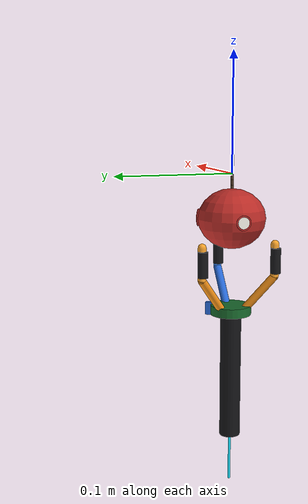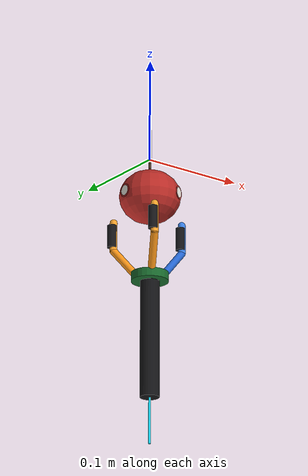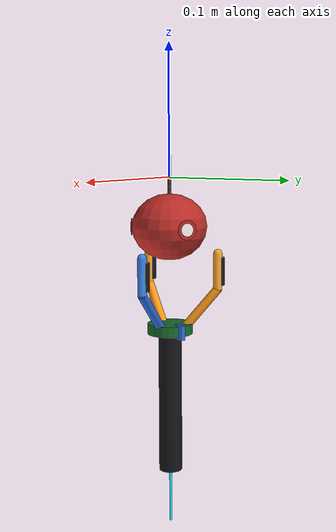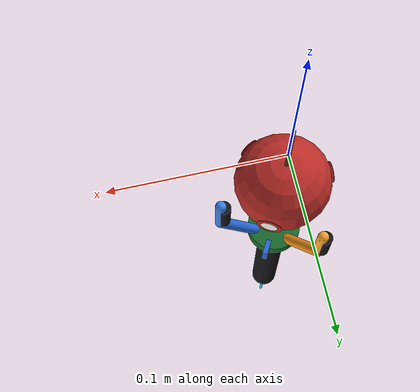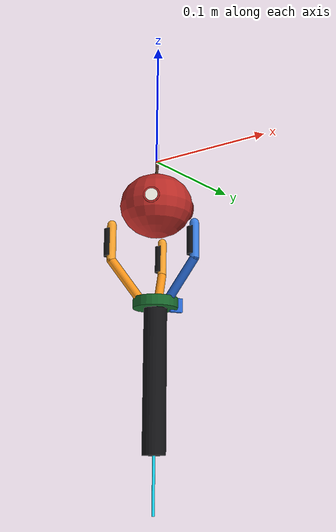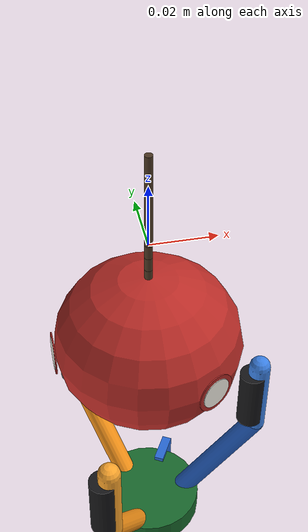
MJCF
<mujoco model="aipick_harvest_detached">
  <compiler angle="radian" autolimits="true"/>
  <option timestep="0.004166666667" gravity="0 0 -9.81" integrator="Euler"/>

  <asset>
    <texture name="sky" type="skybox" builtin="flat" rgb1="1 1 1" rgb2="1 1 1"
             width="256" height="256"/>
  </asset>
  <visual>
    <global offwidth="1280" offheight="960"/>
    <headlight ambient="0.62 0.62 0.62" diffuse="0.45 0.45 0.45" specular="0.1 0.1 0.1"/>
    <scale contactwidth="0.0850" contactheight="0.0120"
           forcewidth="0.02"/>
    <rgba contactpoint="0.12 0.12 0.14 1"/>
  </visual>

  <default>
    <geom rgba="0.62 0.47 0.26 1"/>
    <joint type="ball" stiffness="0.03" damping="0.0015"/>
  </default>

  <worldbody>
    <light pos="0 0 0.3" dir="0 0 -1"/>
    <geom name="spur" type="cylinder" fromto="0 0 0  0 0 0.03" size="0.0012"
          rgba="0.30 0.22 0.14 1"/>
    <body name="fruit" pos="0 0 -0.0372025">
        <freejoint name="fruit_free"/>
        <site name="s_stem" pos="0 0 0.01495" size="0.0008" rgba="1 0 0 1"/>
        <inertial pos="0 0 0" mass="0.073580733796237" diaginertia="2.15835e-05 2.15835e-05 2.43276e-05"/>
        <geom name="apple" type="ellipsoid" size="0.02875 0.02875 0.0253"
              condim="4" priority="1" friction="0.45 0.005 0" rgba="0.75 0.18 0.16 1"/>
        <geom name="label0_rim" type="cylinder" pos="0.0144325 0.0249978233 0" quat="0.707106781 -0.612372436 0.353553391 0"
              size="0.0074635 0.00018" contype="0" conaffinity="0" group="2" mass="0"
              rgba="0.70 0.16 0.15 1"/>
        <geom name="label0" type="cylinder" pos="0.0145325 0.0251710284 0" quat="0.707106781 -0.612372436 0.353553391 0"
              size="0.0049335 0.00018" contype="0" conaffinity="0" group="2" mass="0"
              rgba="0.98 0.97 0.93 1"/>
        <geom name="label1_rim" type="cylinder" pos="-0.028865 3.53494299e-18 0" quat="0.707106781 -8.65956056e-17 -0.707106781 0"
              size="0.006325 0.00018" contype="0" conaffinity="0" group="2" mass="0"
              rgba="0.70 0.16 0.15 1"/>
        <geom name="label1" type="cylinder" pos="-0.029065 3.55943592e-18 0" quat="0.707106781 -8.65956056e-17 -0.707106781 0"
              size="0.0049335 0.00018" contype="0" conaffinity="0" group="2" mass="0"
              rgba="0.98 0.97 0.93 1"/>
        <geom name="label2_rim" type="cylinder" pos="0.0144325 -0.0249978233 0" quat="0.707106781 0.612372436 0.353553391 -0"
              size="0.006325 0.00018" contype="0" conaffinity="0" group="2" mass="0"
              rgba="0.70 0.16 0.15 1"/>
        <geom name="label2" type="cylinder" pos="0.0145325 -0.0251710284 0" quat="0.707106781 0.612372436 0.353553391 -0"
              size="0.0049335 0.00018" contype="0" conaffinity="0" group="2" mass="0"
              rgba="0.98 0.97 0.93 1"/>
      </body>
    <body name="seg4" pos="0 0 0">
        <site name="s_az" pos="0 0 0" size="0.0006" rgba="1 0.4 0 1"/>
        <joint name="j_az_x" type="hinge" axis="1 0 0" stiffness="0" damping="0.0015"/>
        <joint name="j_az_y" type="hinge" axis="0 1 0" stiffness="0" damping="0.0015"/>
        <joint name="j_az_t" type="hinge" axis="0 0 1" stiffness="0.020999999999999998" damping="0.0015"/>
        <inertial pos="0 0 -0.00222525" mass="0.02" diaginertia="2e-05 2e-05 1e-05"/>
        <geom name="g4" type="cylinder" fromto="0 0 0  0 0 -0.0044505" size="0.00192"
              group="3" rgba="0 0 0 0"/>
        <geom name="v4" type="cylinder" fromto="0 0 0  0 0 -0.0044505" size="0.0012"
              contype="0" conaffinity="0" group="2" rgba="0.30 0.22 0.14 1"/>
        <body name="seg3" pos="0 0 -0.0044505">
        <joint name="j_in4"/>
        <inertial pos="0 0 -0.00222525" mass="0.02" diaginertia="2e-05 2e-05 1e-05"/>
        <geom name="g3" type="cylinder" fromto="0 0 0  0 0 -0.0044505" size="0.00216"
              group="3" rgba="0 0 0 0"/>
        <geom name="v3" type="cylinder" fromto="0 0 0  0 0 -0.0044505" size="0.0012"
              contype="0" conaffinity="0" group="2" rgba="0.30 0.22 0.14 1"/>
        <body name="seg2" pos="0 0 -0.0044505">
        <joint name="j_in3"/>
        <inertial pos="0 0 -0.00222525" mass="0.02" diaginertia="2e-05 2e-05 1e-05"/>
        <geom name="g2" type="cylinder" fromto="0 0 0  0 0 -0.0044505" size="0.0024"
              group="3" rgba="0 0 0 0"/>
        <geom name="v2" type="cylinder" fromto="0 0 0  0 0 -0.0044505" size="0.0012"
              contype="0" conaffinity="0" group="2" rgba="0.30 0.22 0.14 1"/>
        <body name="seg1" pos="0 0 -0.0044505">
        <joint name="j_in2"/>
        <inertial pos="0 0 -0.00222525" mass="0.02" diaginertia="2e-05 2e-05 1e-05"/>
        <geom name="g1" type="cylinder" fromto="0 0 0  0 0 -0.0044505" size="0.00264"
              group="3" rgba="0 0 0 0"/>
        <geom name="v1" type="cylinder" fromto="0 0 0  0 0 -0.0044505" size="0.0012"
              contype="0" conaffinity="0" group="2" rgba="0.30 0.22 0.14 1"/>
        <body name="seg0" pos="0 0 -0.0044505">
        <joint name="j_in1"/>
        <inertial pos="0 0 -0.00222525" mass="0.02" diaginertia="2e-05 2e-05 1e-05"/>
        <geom name="g0" type="cylinder" fromto="0 0 0  0 0 -0.0044505" size="0.00288"
              group="3" rgba="0 0 0 0"/>
        <geom name="v0" type="cylinder" fromto="0 0 0  0 0 -0.0044505" size="0.0012"
              contype="0" conaffinity="0" group="2" rgba="0.30 0.22 0.14 1"/>

      </body>
      </body>
      </body>
      </body>
      </body>

    <body name="palm" pos="0 0 -0.12">
      <freejoint name="wrist"/>
      <site name="s_palm" pos="0 0 0" size="0.001" rgba="0 1 1 1"/>
      <inertial pos="0 0 0.004" mass="0.3"
                diaginertia="0.01 0.01 0.01"/>
      <geom name="gbase" type="cylinder" fromto="0 0 0  0 0 0.008" size="0.017425"
            mass="0" rgba="0.10 0.42 0.18 1"/>
      <geom name="index_tab" type="box"
            pos="0.00853825 0.0147887 0.004"
            quat="0.866025404 0 0 0.5" size="0.005 0.0016 0.0055"
            contype="0" conaffinity="0" group="2" mass="0" rgba="0.16 0.42 0.85 1"/>
      <geom name="handle" type="cylinder" pos="0 0 -0.055" size="0.009 0.055"
            contype="0" conaffinity="0" group="2" mass="0" rgba="0.08 0.08 0.09 1"/>
      <geom name="axisrod" type="cylinder" pos="0 0 -0.078" size="0.0011 0.075"
            contype="0" conaffinity="0" group="2" mass="0" rgba="0.10 0.85 0.95 1"/>
      <body name="lo0" pos="0.010925 0 0.004" quat="0.939692621 -0 0.342020143 0">
        <joint name="fj0" type="hinge" axis="0 -1 -0" range="0 1.2" damping="0.002" armature="1e-5"/>
        <geom name="glo0" type="capsule" fromto="0 0 0  0 0 0.04025" size="0.0035"
              mass="0.004" rgba="0.16 0.42 0.85 1"/>
        <body name="up0" pos="0 0 0.04025" quat="0.939692621 0 -0.342020143 -0">
          <geom name="gup0" type="capsule" fromto="0 0 0  0 0 0.0276" size="0.0035"
                mass="0.003" rgba="0.24 0.52 0.92 1"/>
          <geom name="pad0" type="cylinder" pos="-0.001925 0 0.0138"
                size="0.004375 0.010764"
                contype="0" conaffinity="0" group="2" mass="0" rgba="0.09 0.09 0.10 1"/>
        </body>
      </body>
      <body name="lo1" pos="-0.0054625 0.00946132754 0.004" quat="0.939692621 -0.296198133 -0.171010072 0">
        <joint name="fj1" type="hinge" axis="0.866025404 0.5 -0" range="0 1.2" damping="0.002" armature="1e-5"/>
        <geom name="glo1" type="capsule" fromto="0 0 0  0 0 0.04025" size="0.0035"
              mass="0.004" rgba="1 0.6 0.1 1"/>
        <body name="up1" pos="0 0 0.04025" quat="0.939692621 0.296198133 0.171010072 -0">
          <geom name="gup1" type="capsule" fromto="0 0 0  0 0 0.0276" size="0.0035"
                mass="0.003" rgba="1 0.66 0.18 1"/>
          <geom name="pad1" type="cylinder" pos="-0.001925 0 0.0138"
                size="0.004375 0.010764"
                contype="0" conaffinity="0" group="2" mass="0" rgba="0.09 0.09 0.10 1"/>
        </body>
      </body>
      <body name="lo2" pos="-0.0054625 -0.00946132754 0.004" quat="0.939692621 0.296198133 -0.171010072 0">
        <joint name="fj2" type="hinge" axis="-0.866025404 0.5 -0" range="0 1.2" damping="0.002" armature="1e-5"/>
        <geom name="glo2" type="capsule" fromto="0 0 0  0 0 0.04025" size="0.0035"
              mass="0.004" rgba="1 0.6 0.1 1"/>
        <body name="up2" pos="0 0 0.04025" quat="0.939692621 -0.296198133 0.171010072 -0">
          <geom name="gup2" type="capsule" fromto="0 0 0  0 0 0.0276" size="0.0035"
                mass="0.003" rgba="1 0.66 0.18 1"/>
          <geom name="pad2" type="cylinder" pos="-0.001925 0 0.0138"
                size="0.004375 0.010764"
                contype="0" conaffinity="0" group="2" mass="0" rgba="0.09 0.09 0.10 1"/>
        </body>
      </body>
    </body>
  </worldbody>

  <contact>
    <exclude body1="fruit" body2="seg0"/>
    <exclude body1="fruit" body2="seg1"/>
    <exclude body1="fruit" body2="seg2"/>
    <exclude body1="fruit" body2="seg3"/>
    <exclude body1="fruit" body2="seg4"/>
    <exclude body1="palm" body2="lo0"/>
    <exclude body1="palm" body2="lo1"/>
    <exclude body1="palm" body2="lo2"/>
    <exclude body1="palm" body2="up0"/>
    <exclude body1="palm" body2="up1"/>
    <exclude body1="palm" body2="up2"/>
    <exclude body1="world" body2="seg4"/>
  </contact>
  <equality>
    <weld name="grasp" body1="palm" body2="fruit" active="false" solref="0.004 1"/>
  </equality>

  <actuator>
    <position name="a_fj0" joint="fj0" kp="0.6" ctrlrange="0 1.2" forcerange="-1.5 1.5"/>
    <position name="a_fj1" joint="fj1" kp="0.6" ctrlrange="0 1.2" forcerange="-1.5 1.5"/>
    <position name="a_fj2" joint="fj2" kp="0.6" ctrlrange="0 1.2" forcerange="-1.5 1.5"/>
  </actuator>

  <sensor>
    <force name="f_stem" site="s_stem"/>
    <force name="f_az"   site="s_az"/>
    <framezaxis name="ax4" objtype="body" objname="seg4"/>
    <framezaxis name="ax3" objtype="body" objname="seg3"/>
    <framezaxis name="ax2" objtype="body" objname="seg2"/>
    <framezaxis name="ax1" objtype="body" objname="seg1"/>
    <framezaxis name="ax0" objtype="body" objname="seg0"/>
    <framequat name="q_fruit" objtype="body" objname="fruit"/>
    <framequat name="q_palm"  objtype="body" objname="palm"/>
  </sensor>
</mujoco>
